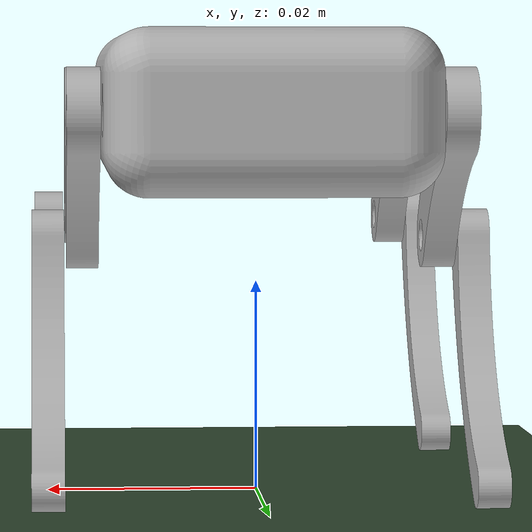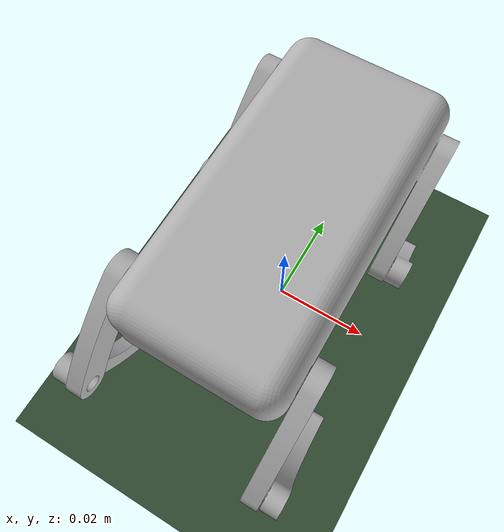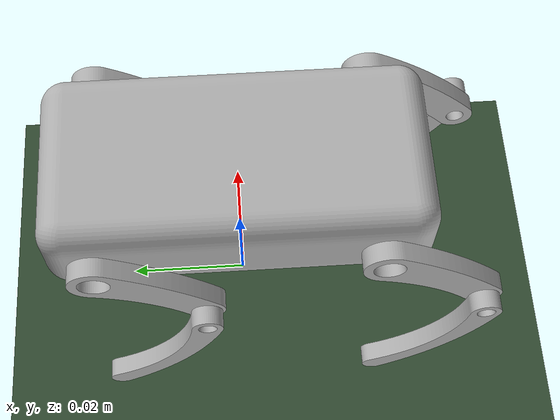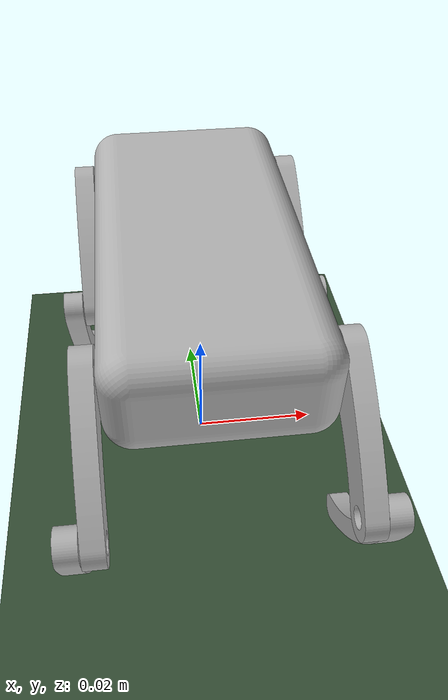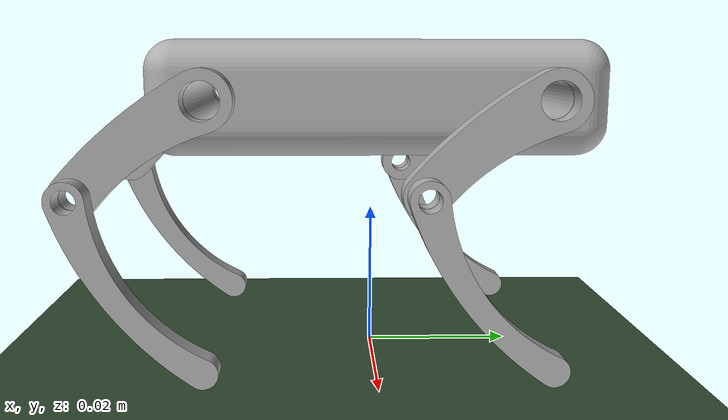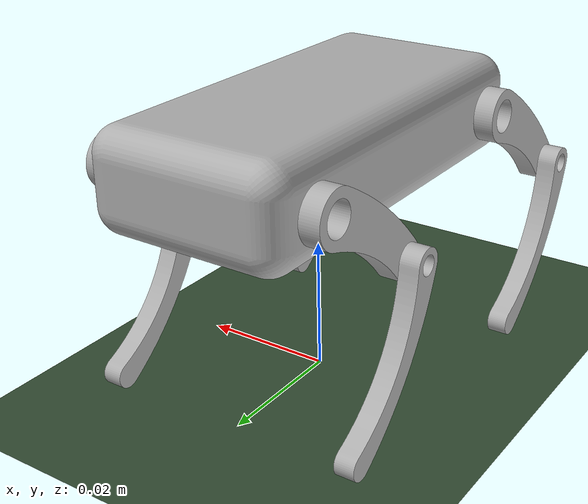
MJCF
<?xml version="1.0" ?>
<mujoco model="converted_model_with_actuators">
  <option gravity="0 0 -9.81" timestep="0.002" integrator="RK4"/>
  <default>
    <geom solref="0.005 1.0" solimp="0.9 0.95 0.001" condim="3"/>
    <joint damping="8.0" armature="0.05" stiffness="10.0"/>
  </default>
  <worldbody>
    <geom name="ground" type="plane" size="10 10 0.1" pos="0 0 0" rgba="0.2 0.3 0.2 1" friction="2.5 0.02 0.001" condim="3" solref="0.005 1.0" solimp="0.9 0.95 0.001"/>
    <body name="base" pos="0.000000 0.000000 0.029000" quat="1.000000 0.000000 0.000000 0.000000">
      <inertial pos="0 0 0.01" mass="8.0" diaginertia="0.08 0.08 0.12"/>
      <geom type="mesh" mesh="base_base" pos="0 0 0" rgba="0.7 0.7 0.7 1" condim="3" friction="2.0 0.015 0.001"/>
      <freejoint name="base_free"/>
      <body name="lfu" pos="0.000000 0.000000 0.000000" quat="1.000000 0.000000 0.000000 0.000000">
        <inertial pos="0 0 0" mass="0.25" diaginertia="0.0008 0.0008 0.0012"/>
        <geom type="mesh" mesh="lfu_lfu" pos="0 0 0" rgba="0.7 0.7 0.7 1" condim="3" friction="2.0 0.015 0.001"/>
        <joint name="xuan_zhuan_1" type="hinge" pos="-0.015000 0.022000 0.007500" axis="1.000000 0.000000 0.000000" damping="2.5" armature="0.03"/>
        <body name="lfd" pos="0.000000 0.000000 0.000000" quat="1.000000 0.000000 0.000000 0.000000">
          <inertial pos="0 0 0" mass="0.20" diaginertia="0.0006 0.0006 0.0008"/>
          <geom type="mesh" mesh="lfd_lfd" pos="0 0 0" rgba="0.7 0.7 0.7 1" condim="3" friction="2.0 0.015 0.001"/>
          <joint name="xuan_zhuan_2" type="hinge" pos="-0.018200 0.005885 -0.004345" axis="1.000000 0.000000 0.000000" damping="2.5" armature="0.03"/>
        </body>
      </body>
      <body name="lbu" pos="0.000000 0.000000 0.000000" quat="1.000000 0.000000 0.000000 0.000000">
        <inertial pos="0 0 0" mass="0.25" diaginertia="0.0008 0.0008 0.0012"/>
        <geom type="mesh" mesh="lbu_lbu" pos="0 0 0" rgba="0.7 0.7 0.7 1" condim="3" friction="2.0 0.015 0.001"/>
        <joint name="xuan_zhuan_3" type="hinge" pos="-0.015000 -0.022000 0.007500" axis="1.000000 0.000000 0.000000" damping="2.5" armature="0.03"/>
        <body name="lbd" pos="0.000000 0.000000 0.000000" quat="1.000000 0.000000 0.000000 0.000000">
          <inertial pos="0 0 0" mass="0.20" diaginertia="0.0006 0.0006 0.0008"/>
          <geom type="mesh" mesh="lbd_lbd" pos="0 0 0" rgba="0.7 0.7 0.7 1" condim="3" friction="2.0 0.015 0.001"/>
          <joint name="xuan_zhuan_4" type="hinge" pos="-0.018200 -0.038115 -0.004345" axis="1.000000 0.000000 0.000000" damping="2.5" armature="0.03"/>
        </body>
      </body>
      <body name="rbu" pos="0.000000 0.000000 0.000000" quat="1.000000 0.000000 0.000000 0.000000">
        <inertial pos="0 0 0" mass="0.25" diaginertia="0.0008 0.0008 0.0012"/>
        <geom type="mesh" mesh="rbu_rbu" pos="0 0 0" rgba="0.7 0.7 0.7 1" condim="3" friction="2.0 0.015 0.001"/>
        <joint name="xuan_zhuan_5" type="hinge" pos="0.015000 -0.022000 0.007500" axis="-1.000000 0.000000 0.000000" damping="2.5" armature="0.03"/>
        <body name="rbd" pos="0.000000 0.000000 0.000000" quat="1.000000 0.000000 0.000000 0.000000">
          <inertial pos="0 0 0" mass="0.20" diaginertia="0.0006 0.0006 0.0008"/>
          <geom type="mesh" mesh="rbd_rbd" pos="0 0 0" rgba="0.7 0.7 0.7 1" condim="3" friction="2.0 0.015 0.001"/>
          <joint name="xuan_zhuan_6" type="hinge" pos="0.018200 -0.038115 -0.004345" axis="1.000000 0.000000 0.000000" damping="2.5" armature="0.03"/>
        </body>
      </body>
      <body name="rfu" pos="0.000000 0.000000 0.000000" quat="1.000000 0.000000 0.000000 0.000000">
        <inertial pos="0 0 0" mass="0.25" diaginertia="0.0008 0.0008 0.0012"/>
        <geom type="mesh" mesh="rfu_rfu" pos="0 0 0" rgba="0.7 0.7 0.7 1" condim="3" friction="2.0 0.015 0.001"/>
        <joint name="xuan_zhuan_7" type="hinge" pos="0.015000 0.022000 0.007500" axis="-1.000000 0.000000 0.000000" damping="2.5" armature="0.03"/>
        <body name="rfd" pos="0.000000 0.000000 0.000000" quat="1.000000 0.000000 0.000000 0.000000">
          <inertial pos="0 0 0" mass="0.20" diaginertia="0.0006 0.0006 0.0008"/>
          <geom type="mesh" mesh="rfd_rfd" pos="0 0 0" rgba="0.7 0.7 0.7 1" condim="3" friction="2.0 0.015 0.001"/>
          <joint name="xuan_zhuan_8" type="hinge" pos="0.018200 0.005885 -0.004345" axis="1.000000 0.000000 0.000000" damping="2.5" armature="0.03"/>
        </body>
      </body>
    </body>
  </worldbody>
  <asset>
    <mesh name="rfu_rfu" file="stl_files/rfu_rfu.stl" scale="0.001 0.001 0.001"/>
    <mesh name="base_base" file="stl_files/base_base.stl" scale="0.001 0.001 0.001"/>
    <mesh name="lbd_lbd" file="stl_files/lbd_lbd.stl" scale="0.001 0.001 0.001"/>
    <mesh name="rbu_rbu" file="stl_files/rbu_rbu.stl" scale="0.001 0.001 0.001"/>
    <mesh name="rbd_rbd" file="stl_files/rbd_rbd.stl" scale="0.001 0.001 0.001"/>
    <mesh name="lfu_lfu" file="stl_files/lfu_lfu.stl" scale="0.001 0.001 0.001"/>
    <mesh name="rfd_rfd" file="stl_files/rfd_rfd.stl" scale="0.001 0.001 0.001"/>
    <mesh name="lbu_lbu" file="stl_files/lbu_lbu.stl" scale="0.001 0.001 0.001"/>
    <mesh name="lfd_lfd" file="stl_files/lfd_lfd.stl" scale="0.001 0.001 0.001"/>
  </asset>
  <visual>
    <global offwidth="2048" offheight="2048"/>
    <headlight ambient="0.2 0.2 0.2" diffuse="0.8 0.8 0.8" specular="0.3 0.3 0.3"/>
  </visual>
  <actuator>
    <position name="xuan_zhuan_1_actuator" joint="xuan_zhuan_1" kp="80.0" kv="40.0" forcelimited="true" forcerange="-60.0 60.0" ctrlrange="-3.14 3.14"/>
    <position name="xuan_zhuan_2_actuator" joint="xuan_zhuan_2" kp="80.0" kv="40.0" forcelimited="true" forcerange="-60.0 60.0" ctrlrange="-3.14 3.14"/>
    <position name="xuan_zhuan_3_actuator" joint="xuan_zhuan_3" kp="80.0" kv="40.0" forcelimited="true" forcerange="-60.0 60.0" ctrlrange="-3.14 3.14"/>
    <position name="xuan_zhuan_4_actuator" joint="xuan_zhuan_4" kp="80.0" kv="40.0" forcelimited="true" forcerange="-60.0 60.0" ctrlrange="-3.14 3.14"/>
    <position name="xuan_zhuan_5_actuator" joint="xuan_zhuan_5" kp="80.0" kv="40.0" forcelimited="true" forcerange="-60.0 60.0" ctrlrange="-3.14 3.14"/>
    <position name="xuan_zhuan_6_actuator" joint="xuan_zhuan_6" kp="80.0" kv="40.0" forcelimited="true" forcerange="-60.0 60.0" ctrlrange="-3.14 3.14"/>
    <position name="xuan_zhuan_7_actuator" joint="xuan_zhuan_7" kp="80.0" kv="40.0" forcelimited="true" forcerange="-60.0 60.0" ctrlrange="-3.14 3.14"/>
    <position name="xuan_zhuan_8_actuator" joint="xuan_zhuan_8" kp="80.0" kv="40.0" forcelimited="true" forcerange="-60.0 60.0" ctrlrange="-3.14 3.14"/>
  </actuator>
</mujoco>
